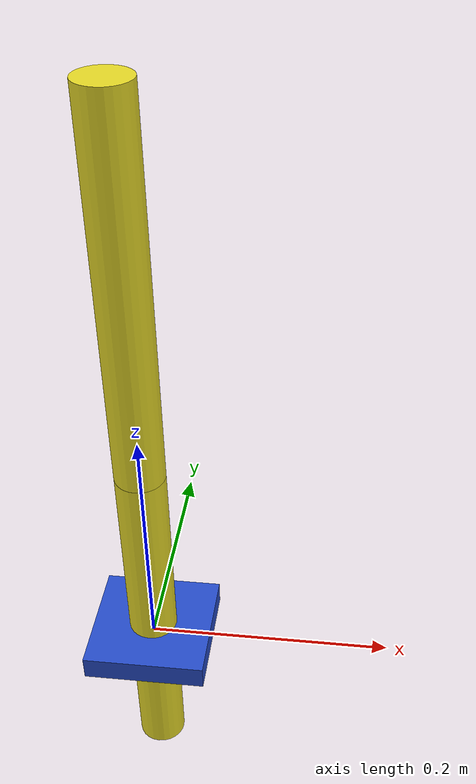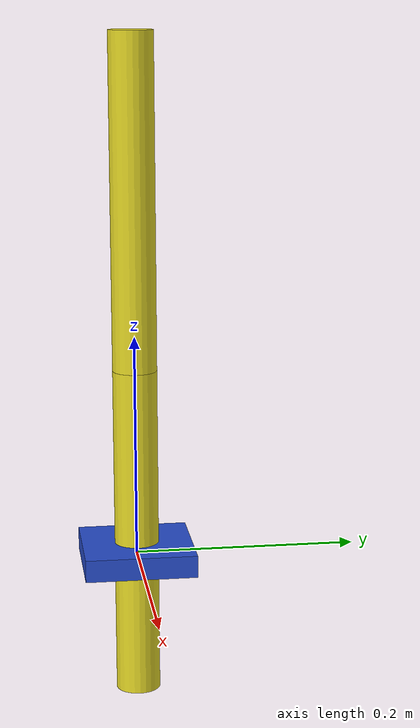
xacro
<?xml version="1.0"?>
<robot xmlns:xacro="http://www.ros.org/wiki/xacro">
    <xacro:property name="box_sides" value="0.1" />
    <xacro:property name="box_height" value="0.02" />
    <xacro:property name="cylinder_radius" value="0.02" />
    <xacro:property name="cylinder_length" value="0.3" />

    <link name="arm_base">
        <visual>
            <geometry>
                <box size= "${box_sides} ${box_sides} ${box_height}"/>
            </geometry>
            <material name="blue"/>
        </visual>

        <collision>
            <geometry>
                <box size= "${box_sides} ${box_sides} ${box_height}"/>
            </geometry>
        </collision>

        <xacro:box_inertia m="0.5" x="${box_sides}" y="${box_sides}" z="${box_height}"
            o_xyz="0 0 0" o_rpy="0 0 0"/>
    </link>

    <xacro:macro name="cylinder" params="prefix r l">
        <link name="${prefix}_link">
            <visual>
                <geometry>
                    <cylinder radius="${r}" length="${l}"/>
                </geometry>
                <material name="yellow"/>
            </visual>
            <collision>
                <geometry>
                    <cylinder radius="${r}" length="${l/3.0}"/>
                </geometry>
            </collision>
            <xacro:cylinder_inertia m="0.3" r="${cylinder_radius}" l="${cylinder_length/3.0}"
                o_xyz="0 0 ${cylinder_length}" o_rpy="0 0 0"/>
        </link>
    </xacro:macro>

    <xacro:cylinder prefix="forearm" r="${cylinder_radius}" l="${cylinder_length}" />
    <xacro:cylinder prefix="hand" r="${cylinder_radius}" l="${cylinder_length}" />

    <joint name="forearm_base_joint" type="revolute">
        <parent link="arm_base"/>
        <child link="forearm_link"/>
        <origin xyz="0 0 ${box_height}" rpy="0 0 0"/>
        <axis xyz="0 1 0" />
        <limit lower="0" upper="${pi/2}" effort="100" velocity="100" />
        <dynamics friction="0.3" damping="0.3" />
    </joint>

    <joint name="forearm_hand_joint" type="revolute">
        <parent link="forearm_link"/>
        <child link="hand_link"/>
        <origin xyz="0 0 ${cylinder_length}" rpy="0 0 0"/>
        <axis xyz="0 1 0" />
        <limit lower="0" upper="${pi/2}" effort="100" velocity="100" />
        <dynamics friction="0.3" damping="0.3" />
    </joint>

</robot>
